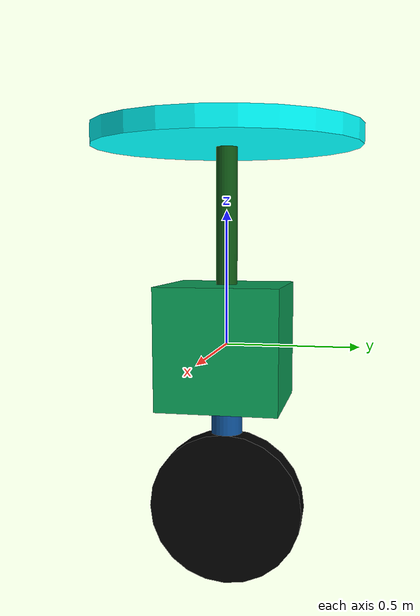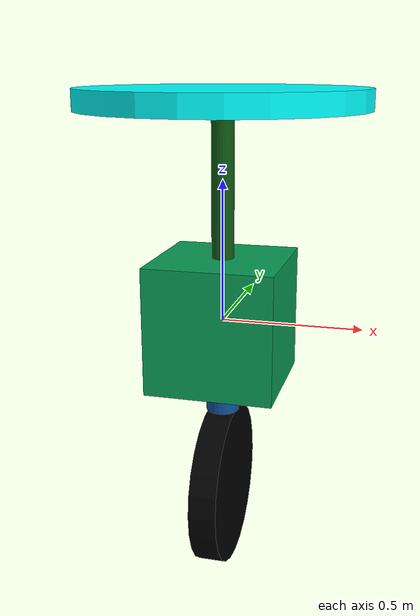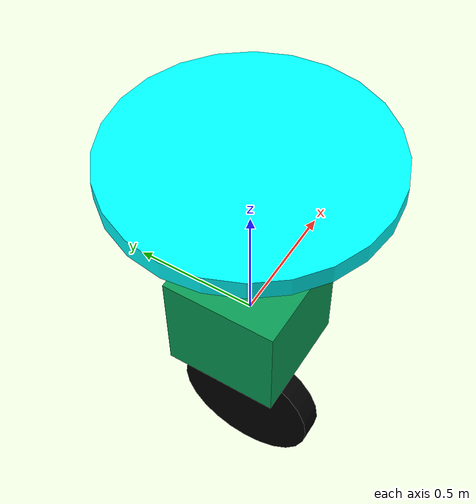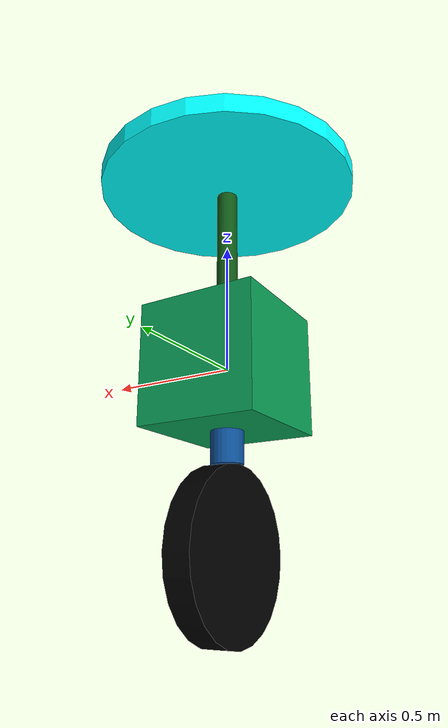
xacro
<robot name="unicycle" xmlns:xacro="http://www.ros.org/wiki/xacro">

  <!-- Define properties for the link -->

  <!-- Configured properties -->
  <xacro:property name="platform_ground_height" value="1.80" />
  <xacro:property name="wheel_radius" value="0.30" />
  <xacro:property name="max_velocity" value="1.0" />
  <xacro:property name="gravity_accel" value="1.0" />

  <!-- Calculated properties -->
  <xacro:property name="platform_height" value="${(platform_ground_height - 2*wheel_radius) * 0.06}" />
  <xacro:property name="cylinder_height" value="${(platform_ground_height - 2*wheel_radius) * 0.42}" />
  <xacro:property name="base_block_height" value="${(platform_ground_height - 2*wheel_radius) * 0.38}" />
  <xacro:property name="stem_height" value="${(platform_ground_height - 2*wheel_radius) * 0.1}" />

  <!-- Fixed properties -->
  <xacro:property name="platform_radius" value="0.50" />
  <xacro:property name="cylinder_radius" value="0.04" />
  <xacro:property name="stem_radius" value="0.06" />
  <xacro:property name="wheel_thickness" value="0.10" />

  <link name="platform">
    <visual>
      <origin xyz="0 0 ${platform_height/2}" rpy="0 0 0" />
      <geometry>
        <cylinder radius = "${platform_radius}" length = "${platform_height}" />
      </geometry>
      <material name="Pastel orange">

        <color rgba="0 1.0 1.0 1.0"/>

      </material>
    </visual>
  </link>

  <link name="verticle_cylinder">
    <visual>
      <origin xyz="0 0 ${cylinder_height/2}" rpy="0 0 0" />
      <geometry>
        <cylinder radius = "${cylinder_radius}" length = "${cylinder_height}" />
      </geometry>
      <material name="Dark Green">
        <color rgba="0.063 0.349 0.086 1.0"/>
      </material>
    </visual>
  </link>

  <link name="base_link">
    <visual>
      <origin xyz="0 0 0" rpy="0 0 0" />
      <geometry>
        <box size="${base_block_height} ${base_block_height} ${base_block_height}" />
      </geometry>
      <material name="Greenish">
        <color rgba="0.035 0.612 0.333 1.0"/>
      </material>
    </visual>
  </link>

  <link name="stem">
    <visual>
      <origin xyz="0 0 ${-stem_height/2}" rpy="0 0 0" />
      <geometry>
        <cylinder radius = "${stem_radius}" length = "${stem_height}" />
      </geometry>
      <material name="Cobalt">
        <color rgba="0.047 0.31 0.588 1.0"/>
      </material>
    </visual>
  </link>

  <link name="wheel">
    <visual>
      <origin xyz="0 0 0" rpy="0 1.57 0" />
      <geometry>
        <cylinder radius = "${wheel_radius}" length = "${wheel_thickness}" />
      </geometry>
      <material name="Black">
        <color rgba="0 0 0 1.0"/>
      </material>
    </visual>
  </link>

  <joint name="j0" type="continuous">
    <origin xyz = "0 0 ${base_block_height/2}" rpy="0 0 0"/>
    <parent link = "base_link"/>
    <child link = "verticle_cylinder"/>
  </joint>

  <joint name="j1" type="revolute">
    <origin xyz = "0 0 ${cylinder_height}" rpy="0 0 0"/>
    <limit lower = "-1.57" upper = "1.57" effort = "10.0" velocity = "1.0" />
    <axis xyz = "0 1 0" />
    <parent link = "verticle_cylinder"/>
    <child link = "platform"/>
  </joint>

  <joint name="j2" type="continuous">
    <origin xyz = "0 0 -${base_block_height/2}" rpy="0 0 0"/>
    <axis xyz = "0 0 1" />
    <parent link = "base_link"/>
    <child link = "stem"/>
  </joint>

  <joint name="j3" type="continuous">
    <origin xyz = "0 0 ${-stem_height - wheel_radius}" rpy="0 0 0"/>
    <axis xyz = "1 0 0" />
    <parent link = "stem"/>
    <child link = "wheel"/>
  </joint>

</robot>
